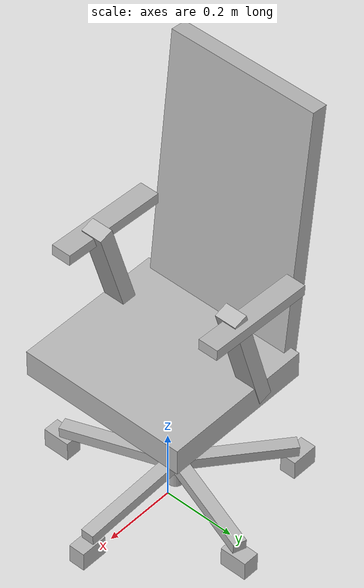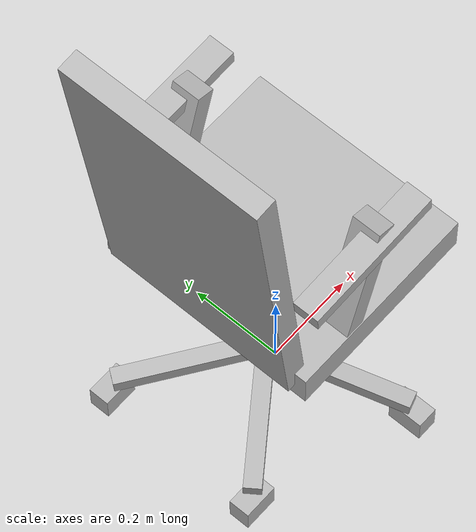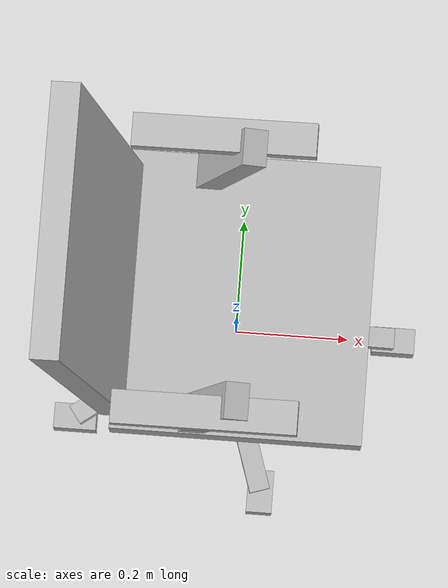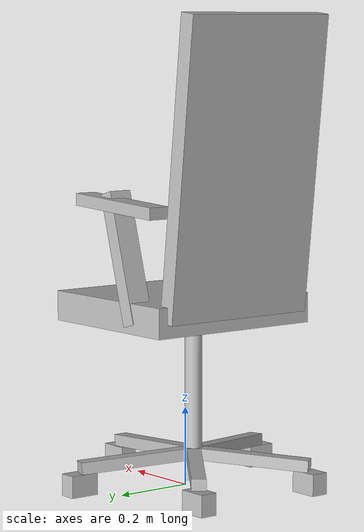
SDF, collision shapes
<?xml version="1.0"?>
<sdf version="1.9">
  <model name="office_chair">
    <static>true</static>
    <link name="body">
      <!-- Primitive collisions tuned to the imported mesh footprint. -->
      <collision name="seat_collision">
        <pose>0.015 -0.002 0.455 0 0 0</pose>
        <geometry><box><size>0.42 0.47 0.075</size></box></geometry>
      </collision>
      <collision name="seat_pan_collision">
        <pose>0.015 -0.002 0.42 0 0 0</pose>
        <geometry><box><size>0.24 0.24 0.04</size></box></geometry>
      </collision>
      <collision name="backrest_collision">
        <pose>-0.23 -0.002 0.82 0 -0.11 0</pose>
        <geometry><box><size>0.045 0.42 0.74</size></box></geometry>
      </collision>
      <collision name="armrest_left_collision">
        <pose>-0.035 0.225 0.725 0 -0.05 0</pose>
        <geometry><box><size>0.30 0.055 0.03</size></box></geometry>
      </collision>
      <collision name="armrest_right_collision">
        <pose>-0.035 -0.225 0.725 0 -0.05 0</pose>
        <geometry><box><size>0.30 0.055 0.03</size></box></geometry>
      </collision>
      <collision name="armrest_left_support_collision">
        <pose>-0.03 0.205 0.595 0 0.28 0</pose>
        <geometry><box><size>0.04 0.06 0.33</size></box></geometry>
      </collision>
      <collision name="armrest_right_support_collision">
        <pose>-0.03 -0.205 0.595 0 0.28 0</pose>
        <geometry><box><size>0.04 0.06 0.33</size></box></geometry>
      </collision>
      <collision name="column_collision">
        <pose>-0.03 -0.002 0.215 0 0 0</pose>
        <geometry><cylinder><radius>0.022</radius><length>0.39</length></cylinder></geometry>
      </collision>
      <collision name="spoke_front_collision">
        <pose>0.125 -0.002 0.08 0 0.055 0</pose>
        <geometry><box><size>0.31 0.036 0.03</size></box></geometry>
      </collision>
      <collision name="spoke_back_left_collision">
        <pose>-0.151 0.086 0.08 0 0.055 2.51327</pose>
        <geometry><box><size>0.30 0.036 0.03</size></box></geometry>
      </collision>
      <collision name="spoke_back_right_collision">
        <pose>-0.151 -0.09 0.08 0 0.055 -2.51327</pose>
        <geometry><box><size>0.30 0.036 0.03</size></box></geometry>
      </collision>
      <collision name="spoke_front_left_collision">
        <pose>0.016 0.141 0.08 0 0.055 1.25664</pose>
        <geometry><box><size>0.30 0.036 0.03</size></box></geometry>
      </collision>
      <collision name="spoke_front_right_collision">
        <pose>0.016 -0.145 0.08 0 0.055 -1.25664</pose>
        <geometry><box><size>0.30 0.036 0.03</size></box></geometry>
      </collision>
      <collision name="caster_front_collision">
        <pose>0.28 -0.002 0.03 0 0 0</pose>
        <geometry><box><size>0.075 0.045 0.055</size></box></geometry>
      </collision>
      <collision name="caster_back_left_collision">
        <pose>-0.273 0.174 0.03 0 0 0</pose>
        <geometry><box><size>0.075 0.045 0.055</size></box></geometry>
      </collision>
      <collision name="caster_back_right_collision">
        <pose>-0.273 -0.178 0.03 0 0 0</pose>
        <geometry><box><size>0.075 0.045 0.055</size></box></geometry>
      </collision>
      <collision name="caster_front_left_collision">
        <pose>0.063 0.283 0.03 0 0 0</pose>
        <geometry><box><size>0.045 0.075 0.055</size></box></geometry>
      </collision>
      <collision name="caster_front_right_collision">
        <pose>0.063 -0.287 0.03 0 0 0</pose>
        <geometry><box><size>0.045 0.075 0.055</size></box></geometry>
      </collision>

      <visual name="chair_visual">
        <pose>0.106 -0.002 -0.002 0 0 1.5708</pose>
        <geometry>
          <mesh>
            <uri>model://OfficeChairGrey/meshes/OfficeChairGrey.obj</uri>
            <scale>1.04 1.04 1.04</scale>
          </mesh>
        </geometry>
      </visual>
    </link>
  </model>
</sdf>
